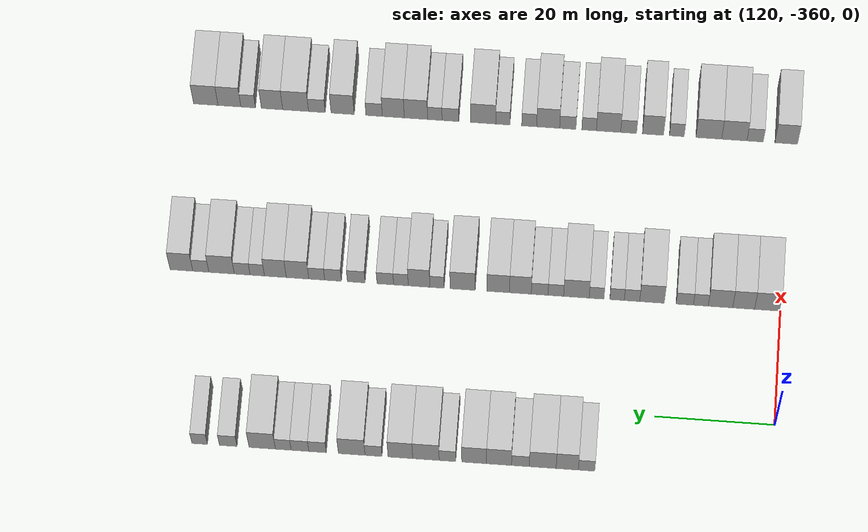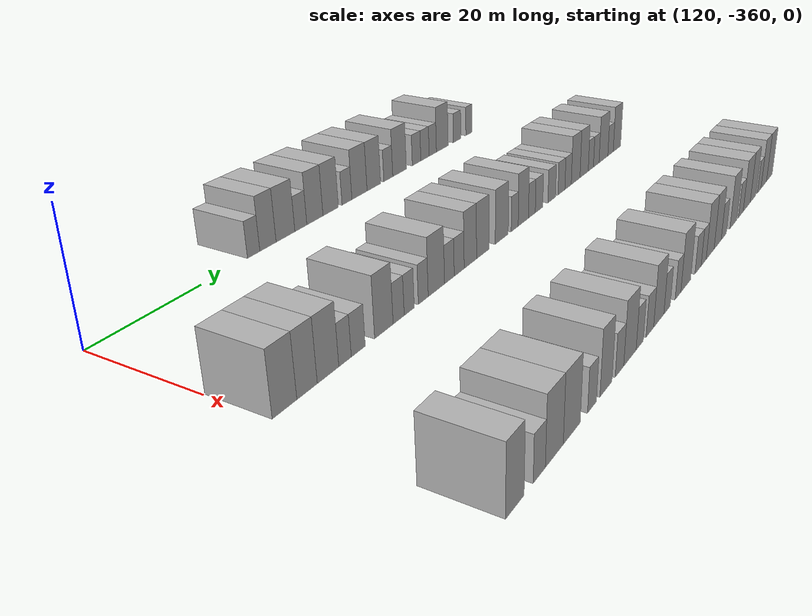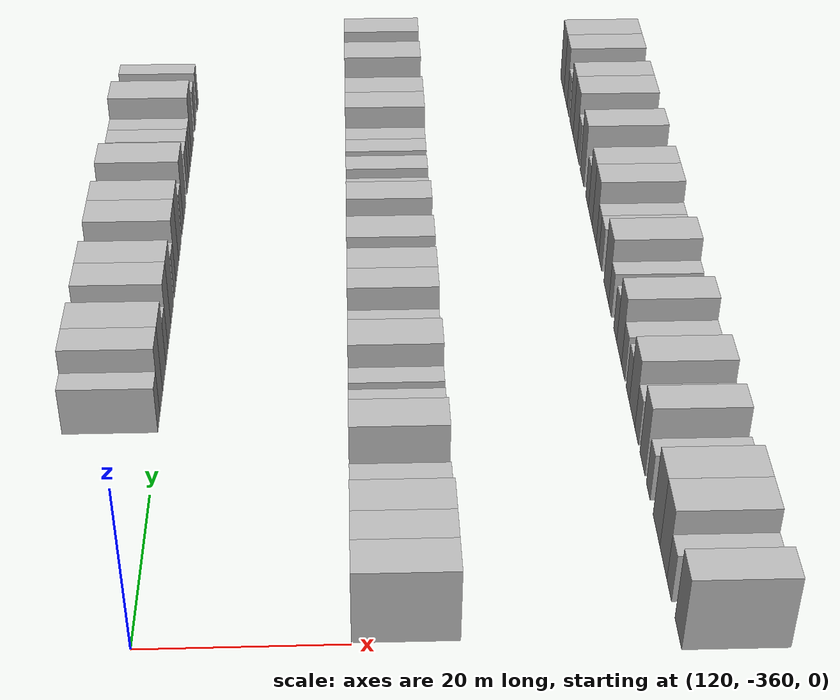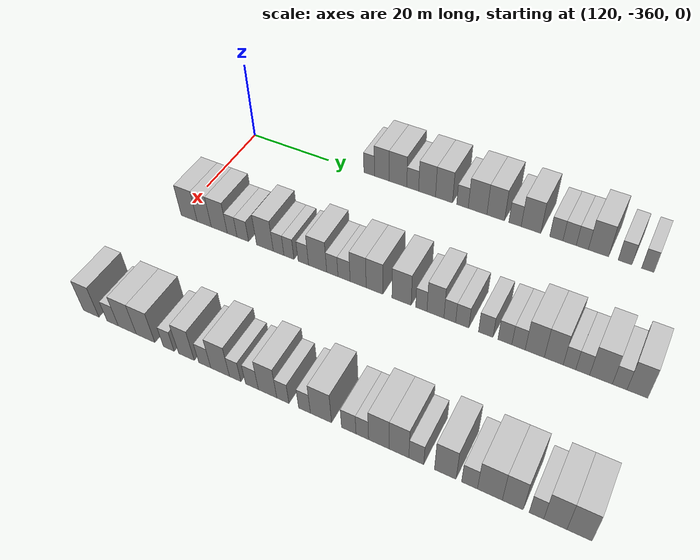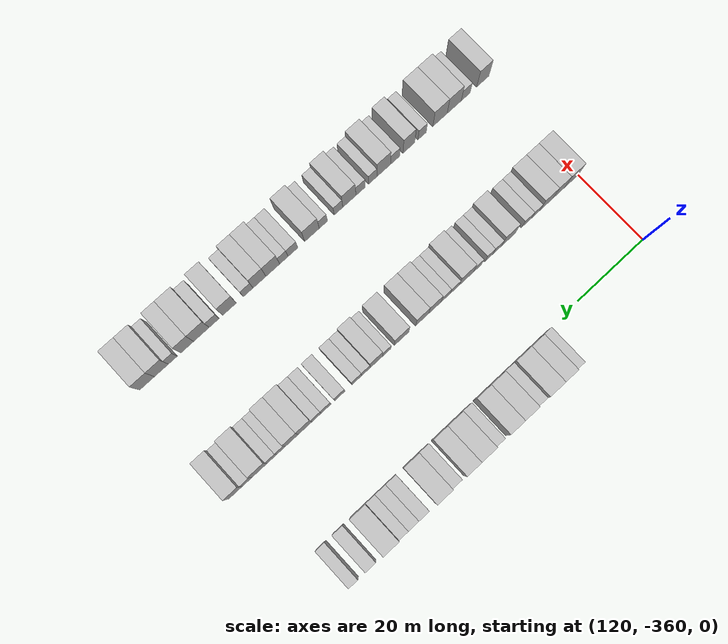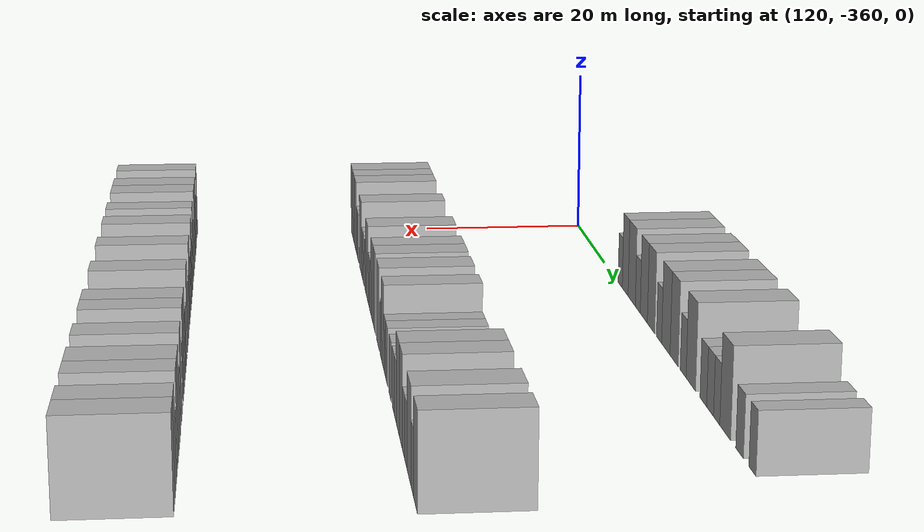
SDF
<sdf version="1.6">
 <world name="default">
  <model name="building_715">
   <static>1</static>
   <pose>115.0000 -329.2498 0 0.000000 0.000000 0.000000</pose>
   <link name="link">
    <pose>0 0 3.00 0 0 0</pose>
    <collision name="collision"><geometry><box><size>10.0000 2.7240 6.0000</size></box></geometry></collision>
    <visual name="visual">
     <cast_shadows>0</cast_shadows>
     <geometry><box><size>10.0000 2.7240 6.0000</size></box></geometry>
     <material>
      <script>
       <uri>model://HANNAS_wall/materials/scripts</uri>
       <uri>model://HANNAS_wall/materials/textures</uri>
       <name>vrc/HANNAS_wall</name>
      </script>
     </material>
    </visual>
   </link>
  </model>
  <model name="building_716">
   <static>1</static>
   <pose>115.0000 -326.0414 0 0.000000 0.000000 0.000000</pose>
   <link name="link">
    <pose>0 0 4.50 0 0 0</pose>
    <collision name="collision"><geometry><box><size>10.0000 3.6928 9.0000</size></box></geometry></collision>
    <visual name="visual">
     <cast_shadows>0</cast_shadows>
     <geometry><box><size>10.0000 3.6928 9.0000</size></box></geometry>
     <material>
      <script>
       <uri>model://HANNAS_wall/materials/scripts</uri>
       <uri>model://HANNAS_wall/materials/textures</uri>
       <name>vrc/HANNAS_wall</name>
      </script>
     </material>
    </visual>
   </link>
  </model>
  <model name="building_717">
   <static>1</static>
   <pose>115.0000 -321.9662 0 0.000000 0.000000 0.000000</pose>
   <link name="link">
    <pose>0 0 4.50 0 0 0</pose>
    <collision name="collision"><geometry><box><size>10.0000 4.4576 9.0000</size></box></geometry></collision>
    <visual name="visual">
     <cast_shadows>0</cast_shadows>
     <geometry><box><size>10.0000 4.4576 9.0000</size></box></geometry>
     <material>
      <script>
       <uri>model://HANNAS_wall/materials/scripts</uri>
       <uri>model://HANNAS_wall/materials/textures</uri>
       <name>vrc/HANNAS_wall</name>
      </script>
     </material>
    </visual>
   </link>
  </model>
  <model name="building_718">
   <static>1</static>
   <pose>115.0000 -318.2610 0 0.000000 0.000000 0.000000</pose>
   <link name="link">
    <pose>0 0 3.00 0 0 0</pose>
    <collision name="collision"><geometry><box><size>10.0000 2.9528 6.0000</size></box></geometry></collision>
    <visual name="visual">
     <cast_shadows>0</cast_shadows>
     <geometry><box><size>10.0000 2.9528 6.0000</size></box></geometry>
     <material>
      <script>
       <uri>model://HANNAS_wall/materials/scripts</uri>
       <uri>model://HANNAS_wall/materials/textures</uri>
       <name>vrc/HANNAS_wall</name>
      </script>
     </material>
    </visual>
   </link>
  </model>
  <model name="building_719">
   <static>1</static>
   <pose>115.0000 -314.7146 0 0.000000 0.000000 0.000000</pose>
   <link name="link">
    <pose>0 0 4.50 0 0 0</pose>
    <collision name="collision"><geometry><box><size>10.0000 4.1400 9.0000</size></box></geometry></collision>
    <visual name="visual">
     <cast_shadows>0</cast_shadows>
     <geometry><box><size>10.0000 4.1400 9.0000</size></box></geometry>
     <material>
      <script>
       <uri>model://HANNAS_wall/materials/scripts</uri>
       <uri>model://HANNAS_wall/materials/textures</uri>
       <name>vrc/HANNAS_wall</name>
      </script>
     </material>
    </visual>
   </link>
  </model>
  <model name="building_720">
   <static>1</static>
   <pose>115.0000 -310.5794 0 0.000000 0.000000 0.000000</pose>
   <link name="link">
    <pose>0 0 4.50 0 0 0</pose>
    <collision name="collision"><geometry><box><size>10.0000 4.1304 9.0000</size></box></geometry></collision>
    <visual name="visual">
     <cast_shadows>0</cast_shadows>
     <geometry><box><size>10.0000 4.1304 9.0000</size></box></geometry>
     <material>
      <script>
       <uri>model://HANNAS_wall/materials/scripts</uri>
       <uri>model://HANNAS_wall/materials/textures</uri>
       <name>vrc/HANNAS_wall</name>
      </script>
     </material>
    </visual>
   </link>
  </model>
  <model name="building_721">
   <static>1</static>
   <pose>115.0000 -306.1356 0 0.000000 0.000000 0.000000</pose>
   <link name="link">
    <pose>0 0 3.00 0 0 0</pose>
    <collision name="collision"><geometry><box><size>10.0000 2.7572 6.0000</size></box></geometry></collision>
    <visual name="visual">
     <cast_shadows>0</cast_shadows>
     <geometry><box><size>10.0000 2.7572 6.0000</size></box></geometry>
     <material>
      <script>
       <uri>model://HANNAS_wall/materials/scripts</uri>
       <uri>model://HANNAS_wall/materials/textures</uri>
       <name>vrc/HANNAS_wall</name>
      </script>
     </material>
    </visual>
   </link>
  </model>
  <model name="building_722">
   <static>1</static>
   <pose>115.0000 -302.5561 0 0.000000 0.000000 0.000000</pose>
   <link name="link">
    <pose>0 0 4.50 0 0 0</pose>
    <collision name="collision"><geometry><box><size>10.0000 4.4019 9.0000</size></box></geometry></collision>
    <visual name="visual">
     <cast_shadows>0</cast_shadows>
     <geometry><box><size>10.0000 4.4019 9.0000</size></box></geometry>
     <material>
      <script>
       <uri>model://HANNAS_wall/materials/scripts</uri>
       <uri>model://HANNAS_wall/materials/textures</uri>
       <name>vrc/HANNAS_wall</name>
      </script>
     </material>
    </visual>
   </link>
  </model>
  <model name="building_723">
   <static>1</static>
   <pose>115.0000 -298.3073 0 0.000000 0.000000 0.000000</pose>
   <link name="link">
    <pose>0 0 4.50 0 0 0</pose>
    <collision name="collision"><geometry><box><size>10.0000 4.0957 9.0000</size></box></geometry></collision>
    <visual name="visual">
     <cast_shadows>0</cast_shadows>
     <geometry><box><size>10.0000 4.0957 9.0000</size></box></geometry>
     <material>
      <script>
       <uri>model://HANNAS_wall/materials/scripts</uri>
       <uri>model://HANNAS_wall/materials/textures</uri>
       <name>vrc/HANNAS_wall</name>
      </script>
     </material>
    </visual>
   </link>
  </model>
  <model name="building_724">
   <static>1</static>
   <pose>115.0000 -293.8454 0 0.000000 0.000000 0.000000</pose>
   <link name="link">
    <pose>0 0 3.00 0 0 0</pose>
    <collision name="collision"><geometry><box><size>10.0000 2.8279 6.0000</size></box></geometry></collision>
    <visual name="visual">
     <cast_shadows>0</cast_shadows>
     <geometry><box><size>10.0000 2.8279 6.0000</size></box></geometry>
     <material>
      <script>
       <uri>model://HANNAS_wall/materials/scripts</uri>
       <uri>model://HANNAS_wall/materials/textures</uri>
       <name>vrc/HANNAS_wall</name>
      </script>
     </material>
    </visual>
   </link>
  </model>
  <model name="building_725">
   <static>1</static>
   <pose>115.0000 -290.2111 0 0.000000 0.000000 0.000000</pose>
   <link name="link">
    <pose>0 0 4.50 0 0 0</pose>
    <collision name="collision"><geometry><box><size>10.0000 4.4407 9.0000</size></box></geometry></collision>
    <visual name="visual">
     <cast_shadows>0</cast_shadows>
     <geometry><box><size>10.0000 4.4407 9.0000</size></box></geometry>
     <material>
      <script>
       <uri>model://HANNAS_wall/materials/scripts</uri>
       <uri>model://HANNAS_wall/materials/textures</uri>
       <name>vrc/HANNAS_wall</name>
      </script>
     </material>
    </visual>
   </link>
  </model>
  <model name="building_726">
   <static>1</static>
   <pose>115.0000 -284.5270 0 0.000000 0.000000 0.000000</pose>
   <link name="link">
    <pose>0 0 3.00 0 0 0</pose>
    <collision name="collision"><geometry><box><size>10.0000 2.9277 6.0000</size></box></geometry></collision>
    <visual name="visual">
     <cast_shadows>0</cast_shadows>
     <geometry><box><size>10.0000 2.9277 6.0000</size></box></geometry>
     <material>
      <script>
       <uri>model://HANNAS_wall/materials/scripts</uri>
       <uri>model://HANNAS_wall/materials/textures</uri>
       <name>vrc/HANNAS_wall</name>
      </script>
     </material>
    </visual>
   </link>
  </model>
  <model name="building_727">
   <static>1</static>
   <pose>115.0000 -281.5890 0 0.000000 0.000000 0.000000</pose>
   <link name="link">
    <pose>0 0 3.00 0 0 0</pose>
    <collision name="collision"><geometry><box><size>10.0000 2.9483 6.0000</size></box></geometry></collision>
    <visual name="visual">
     <cast_shadows>0</cast_shadows>
     <geometry><box><size>10.0000 2.9483 6.0000</size></box></geometry>
     <material>
      <script>
       <uri>model://HANNAS_wall/materials/scripts</uri>
       <uri>model://HANNAS_wall/materials/textures</uri>
       <name>vrc/HANNAS_wall</name>
      </script>
     </material>
    </visual>
   </link>
  </model>
  <model name="building_728">
   <static>1</static>
   <pose>115.0000 -278.8057 0 0.000000 0.000000 0.000000</pose>
   <link name="link">
    <pose>0 0 3.00 0 0 0</pose>
    <collision name="collision"><geometry><box><size>10.0000 2.6183 6.0000</size></box></geometry></collision>
    <visual name="visual">
     <cast_shadows>0</cast_shadows>
     <geometry><box><size>10.0000 2.6183 6.0000</size></box></geometry>
     <material>
      <script>
       <uri>model://HANNAS_wall/materials/scripts</uri>
       <uri>model://HANNAS_wall/materials/textures</uri>
       <name>vrc/HANNAS_wall</name>
      </script>
     </material>
    </visual>
   </link>
  </model>
  <model name="building_729">
   <static>1</static>
   <pose>115.0000 -275.3035 0 0.000000 0.000000 0.000000</pose>
   <link name="link">
    <pose>0 0 4.50 0 0 0</pose>
    <collision name="collision"><geometry><box><size>10.0000 4.3861 9.0000</size></box></geometry></collision>
    <visual name="visual">
     <cast_shadows>0</cast_shadows>
     <geometry><box><size>10.0000 4.3861 9.0000</size></box></geometry>
     <material>
      <script>
       <uri>model://HANNAS_wall/materials/scripts</uri>
       <uri>model://HANNAS_wall/materials/textures</uri>
       <name>vrc/HANNAS_wall</name>
      </script>
     </material>
    </visual>
   </link>
  </model>
  <model name="building_730">
   <static>1</static>
   <pose>115.0000 -269.6420 0 0.000000 0.000000 0.000000</pose>
   <link name="link">
    <pose>0 0 3.00 0 0 0</pose>
    <collision name="collision"><geometry><box><size>10.0000 2.9368 6.0000</size></box></geometry></collision>
    <visual name="visual">
     <cast_shadows>0</cast_shadows>
     <geometry><box><size>10.0000 2.9368 6.0000</size></box></geometry>
     <material>
      <script>
       <uri>model://HANNAS_wall/materials/scripts</uri>
       <uri>model://HANNAS_wall/materials/textures</uri>
       <name>vrc/HANNAS_wall</name>
      </script>
     </material>
    </visual>
   </link>
  </model>
  <model name="building_731">
   <static>1</static>
   <pose>115.0000 -264.8792 0 0.000000 0.000000 0.000000</pose>
   <link name="link">
    <pose>0 0 3.00 0 0 0</pose>
    <collision name="collision"><geometry><box><size>10.0000 2.5888 6.0000</size></box></geometry></collision>
    <visual name="visual">
     <cast_shadows>0</cast_shadows>
     <geometry><box><size>10.0000 2.5888 6.0000</size></box></geometry>
     <material>
      <script>
       <uri>model://HANNAS_wall/materials/scripts</uri>
       <uri>model://HANNAS_wall/materials/textures</uri>
       <name>vrc/HANNAS_wall</name>
      </script>
     </material>
    </visual>
   </link>
  </model>
  <model name="building_933">
   <static>1</static>
   <pose>145.0000 -357.7057 0 0.000000 0.000000 0.000000</pose>
   <link name="link">
    <pose>0 0 4.50 0 0 0</pose>
    <collision name="collision"><geometry><box><size>10.0000 4.2015 9.0000</size></box></geometry></collision>
    <visual name="visual">
     <cast_shadows>0</cast_shadows>
     <geometry><box><size>10.0000 4.2015 9.0000</size></box></geometry>
     <material>
      <script>
       <uri>model://HANNAS_wall/materials/scripts</uri>
       <uri>model://HANNAS_wall/materials/textures</uri>
       <name>vrc/HANNAS_wall</name>
      </script>
     </material>
    </visual>
   </link>
  </model>
  <model name="building_934">
   <static>1</static>
   <pose>145.0000 -353.7653 0 0.000000 0.000000 0.000000</pose>
   <link name="link">
    <pose>0 0 4.50 0 0 0</pose>
    <collision name="collision"><geometry><box><size>10.0000 3.6791 9.0000</size></box></geometry></collision>
    <visual name="visual">
     <cast_shadows>0</cast_shadows>
     <geometry><box><size>10.0000 3.6791 9.0000</size></box></geometry>
     <material>
      <script>
       <uri>model://HANNAS_wall/materials/scripts</uri>
       <uri>model://HANNAS_wall/materials/textures</uri>
       <name>vrc/HANNAS_wall</name>
      </script>
     </material>
    </visual>
   </link>
  </model>
  <model name="building_935">
   <static>1</static>
   <pose>145.0000 -349.8716 0 0.000000 0.000000 0.000000</pose>
   <link name="link">
    <pose>0 0 4.50 0 0 0</pose>
    <collision name="collision"><geometry><box><size>10.0000 4.1082 9.0000</size></box></geometry></collision>
    <visual name="visual">
     <cast_shadows>0</cast_shadows>
     <geometry><box><size>10.0000 4.1082 9.0000</size></box></geometry>
     <material>
      <script>
       <uri>model://HANNAS_wall/materials/scripts</uri>
       <uri>model://HANNAS_wall/materials/textures</uri>
       <name>vrc/HANNAS_wall</name>
      </script>
     </material>
    </visual>
   </link>
  </model>
  <model name="building_936">
   <static>1</static>
   <pose>145.0000 -346.5697 0 0.000000 0.000000 0.000000</pose>
   <link name="link">
    <pose>0 0 3.00 0 0 0</pose>
    <collision name="collision"><geometry><box><size>10.0000 2.4957 6.0000</size></box></geometry></collision>
    <visual name="visual">
     <cast_shadows>0</cast_shadows>
     <geometry><box><size>10.0000 2.4957 6.0000</size></box></geometry>
     <material>
      <script>
       <uri>model://HANNAS_wall/materials/scripts</uri>
       <uri>model://HANNAS_wall/materials/textures</uri>
       <name>vrc/HANNAS_wall</name>
      </script>
     </material>
    </visual>
   </link>
  </model>
  <model name="building_937">
   <static>1</static>
   <pose>145.0000 -343.8709 0 0.000000 0.000000 0.000000</pose>
   <link name="link">
    <pose>0 0 3.00 0 0 0</pose>
    <collision name="collision"><geometry><box><size>10.0000 2.9018 6.0000</size></box></geometry></collision>
    <visual name="visual">
     <cast_shadows>0</cast_shadows>
     <geometry><box><size>10.0000 2.9018 6.0000</size></box></geometry>
     <material>
      <script>
       <uri>model://HANNAS_wall/materials/scripts</uri>
       <uri>model://HANNAS_wall/materials/textures</uri>
       <name>vrc/HANNAS_wall</name>
      </script>
     </material>
    </visual>
   </link>
  </model>
  <model name="building_938">
   <static>1</static>
   <pose>145.0000 -338.3529 0 0.000000 0.000000 0.000000</pose>
   <link name="link">
    <pose>0 0 4.50 0 0 0</pose>
    <collision name="collision"><geometry><box><size>10.0000 4.1342 9.0000</size></box></geometry></collision>
    <visual name="visual">
     <cast_shadows>0</cast_shadows>
     <geometry><box><size>10.0000 4.1342 9.0000</size></box></geometry>
     <material>
      <script>
       <uri>model://HANNAS_wall/materials/scripts</uri>
       <uri>model://HANNAS_wall/materials/textures</uri>
       <name>vrc/HANNAS_wall</name>
      </script>
     </material>
    </visual>
   </link>
  </model>
  <model name="building_939">
   <static>1</static>
   <pose>145.0000 -334.9899 0 0.000000 0.000000 0.000000</pose>
   <link name="link">
    <pose>0 0 3.00 0 0 0</pose>
    <collision name="collision"><geometry><box><size>10.0000 2.5919 6.0000</size></box></geometry></collision>
    <visual name="visual">
     <cast_shadows>0</cast_shadows>
     <geometry><box><size>10.0000 2.5919 6.0000</size></box></geometry>
     <material>
      <script>
       <uri>model://HANNAS_wall/materials/scripts</uri>
       <uri>model://HANNAS_wall/materials/textures</uri>
       <name>vrc/HANNAS_wall</name>
      </script>
     </material>
    </visual>
   </link>
  </model>
  <model name="building_940">
   <static>1</static>
   <pose>145.0000 -332.4818 0 0.000000 0.000000 0.000000</pose>
   <link name="link">
    <pose>0 0 3.00 0 0 0</pose>
    <collision name="collision"><geometry><box><size>10.0000 2.4243 6.0000</size></box></geometry></collision>
    <visual name="visual">
     <cast_shadows>0</cast_shadows>
     <geometry><box><size>10.0000 2.4243 6.0000</size></box></geometry>
     <material>
      <script>
       <uri>model://HANNAS_wall/materials/scripts</uri>
       <uri>model://HANNAS_wall/materials/textures</uri>
       <name>vrc/HANNAS_wall</name>
      </script>
     </material>
    </visual>
   </link>
  </model>
  <model name="building_941">
   <static>1</static>
   <pose>145.0000 -329.0233 0 0.000000 0.000000 0.000000</pose>
   <link name="link">
    <pose>0 0 3.00 0 0 0</pose>
    <collision name="collision"><geometry><box><size>10.0000 2.4925 6.0000</size></box></geometry></collision>
    <visual name="visual">
     <cast_shadows>0</cast_shadows>
     <geometry><box><size>10.0000 2.4925 6.0000</size></box></geometry>
     <material>
      <script>
       <uri>model://HANNAS_wall/materials/scripts</uri>
       <uri>model://HANNAS_wall/materials/textures</uri>
       <name>vrc/HANNAS_wall</name>
      </script>
     </material>
    </visual>
   </link>
  </model>
  <model name="building_942">
   <static>1</static>
   <pose>145.0000 -325.6285 0 0.000000 0.000000 0.000000</pose>
   <link name="link">
    <pose>0 0 4.50 0 0 0</pose>
    <collision name="collision"><geometry><box><size>10.0000 4.2970 9.0000</size></box></geometry></collision>
    <visual name="visual">
     <cast_shadows>0</cast_shadows>
     <geometry><box><size>10.0000 4.2970 9.0000</size></box></geometry>
     <material>
      <script>
       <uri>model://HANNAS_wall/materials/scripts</uri>
       <uri>model://HANNAS_wall/materials/textures</uri>
       <name>vrc/HANNAS_wall</name>
      </script>
     </material>
    </visual>
   </link>
  </model>
  <model name="building_943">
   <static>1</static>
   <pose>145.0000 -322.1642 0 0.000000 0.000000 0.000000</pose>
   <link name="link">
    <pose>0 0 3.00 0 0 0</pose>
    <collision name="collision"><geometry><box><size>10.0000 2.6316 6.0000</size></box></geometry></collision>
    <visual name="visual">
     <cast_shadows>0</cast_shadows>
     <geometry><box><size>10.0000 2.6316 6.0000</size></box></geometry>
     <material>
      <script>
       <uri>model://HANNAS_wall/materials/scripts</uri>
       <uri>model://HANNAS_wall/materials/textures</uri>
       <name>vrc/HANNAS_wall</name>
      </script>
     </material>
    </visual>
   </link>
  </model>
  <model name="building_944">
   <static>1</static>
   <pose>145.0000 -319.4399 0 0.000000 0.000000 0.000000</pose>
   <link name="link">
    <pose>0 0 3.00 0 0 0</pose>
    <collision name="collision"><geometry><box><size>10.0000 2.8170 6.0000</size></box></geometry></collision>
    <visual name="visual">
     <cast_shadows>0</cast_shadows>
     <geometry><box><size>10.0000 2.8170 6.0000</size></box></geometry>
     <material>
      <script>
       <uri>model://HANNAS_wall/materials/scripts</uri>
       <uri>model://HANNAS_wall/materials/textures</uri>
       <name>vrc/HANNAS_wall</name>
      </script>
     </material>
    </visual>
   </link>
  </model>
  <model name="building_945">
   <static>1</static>
   <pose>145.0000 -316.2067 0 0.000000 0.000000 0.000000</pose>
   <link name="link">
    <pose>0 0 4.50 0 0 0</pose>
    <collision name="collision"><geometry><box><size>10.0000 3.6494 9.0000</size></box></geometry></collision>
    <visual name="visual">
     <cast_shadows>0</cast_shadows>
     <geometry><box><size>10.0000 3.6494 9.0000</size></box></geometry>
     <material>
      <script>
       <uri>model://HANNAS_wall/materials/scripts</uri>
       <uri>model://HANNAS_wall/materials/textures</uri>
       <name>vrc/HANNAS_wall</name>
      </script>
     </material>
    </visual>
   </link>
  </model>
  <model name="building_946">
   <static>1</static>
   <pose>145.0000 -312.4852 0 0.000000 0.000000 0.000000</pose>
   <link name="link">
    <pose>0 0 4.50 0 0 0</pose>
    <collision name="collision"><geometry><box><size>10.0000 3.7936 9.0000</size></box></geometry></collision>
    <visual name="visual">
     <cast_shadows>0</cast_shadows>
     <geometry><box><size>10.0000 3.7936 9.0000</size></box></geometry>
     <material>
      <script>
       <uri>model://HANNAS_wall/materials/scripts</uri>
       <uri>model://HANNAS_wall/materials/textures</uri>
       <name>vrc/HANNAS_wall</name>
      </script>
     </material>
    </visual>
   </link>
  </model>
  <model name="building_947">
   <static>1</static>
   <pose>145.0000 -306.4692 0 0.000000 0.000000 0.000000</pose>
   <link name="link">
    <pose>0 0 4.50 0 0 0</pose>
    <collision name="collision"><geometry><box><size>10.0000 4.2383 9.0000</size></box></geometry></collision>
    <visual name="visual">
     <cast_shadows>0</cast_shadows>
     <geometry><box><size>10.0000 4.2383 9.0000</size></box></geometry>
     <material>
      <script>
       <uri>model://HANNAS_wall/materials/scripts</uri>
       <uri>model://HANNAS_wall/materials/textures</uri>
       <name>vrc/HANNAS_wall</name>
      </script>
     </material>
    </visual>
   </link>
  </model>
  <model name="building_948">
   <static>1</static>
   <pose>145.0000 -302.1408 0 0.000000 0.000000 0.000000</pose>
   <link name="link">
    <pose>0 0 3.00 0 0 0</pose>
    <collision name="collision"><geometry><box><size>10.0000 2.4185 6.0000</size></box></geometry></collision>
    <visual name="visual">
     <cast_shadows>0</cast_shadows>
     <geometry><box><size>10.0000 2.4185 6.0000</size></box></geometry>
     <material>
      <script>
       <uri>model://HANNAS_wall/materials/scripts</uri>
       <uri>model://HANNAS_wall/materials/textures</uri>
       <name>vrc/HANNAS_wall</name>
      </script>
     </material>
    </visual>
   </link>
  </model>
  <model name="building_949">
   <static>1</static>
   <pose>145.0000 -299.1089 0 0.000000 0.000000 0.000000</pose>
   <link name="link">
    <pose>0 0 4.50 0 0 0</pose>
    <collision name="collision"><geometry><box><size>10.0000 3.6453 9.0000</size></box></geometry></collision>
    <visual name="visual">
     <cast_shadows>0</cast_shadows>
     <geometry><box><size>10.0000 3.6453 9.0000</size></box></geometry>
     <material>
      <script>
       <uri>model://HANNAS_wall/materials/scripts</uri>
       <uri>model://HANNAS_wall/materials/textures</uri>
       <name>vrc/HANNAS_wall</name>
      </script>
     </material>
    </visual>
   </link>
  </model>
  <model name="building_950">
   <static>1</static>
   <pose>145.0000 -296.0420 0 0.000000 0.000000 0.000000</pose>
   <link name="link">
    <pose>0 0 3.00 0 0 0</pose>
    <collision name="collision"><geometry><box><size>10.0000 2.4884 6.0000</size></box></geometry></collision>
    <visual name="visual">
     <cast_shadows>0</cast_shadows>
     <geometry><box><size>10.0000 2.4884 6.0000</size></box></geometry>
     <material>
      <script>
       <uri>model://HANNAS_wall/materials/scripts</uri>
       <uri>model://HANNAS_wall/materials/textures</uri>
       <name>vrc/HANNAS_wall</name>
      </script>
     </material>
    </visual>
   </link>
  </model>
  <model name="building_951">
   <static>1</static>
   <pose>145.0000 -293.4002 0 0.000000 0.000000 0.000000</pose>
   <link name="link">
    <pose>0 0 3.00 0 0 0</pose>
    <collision name="collision"><geometry><box><size>10.0000 2.7952 6.0000</size></box></geometry></collision>
    <visual name="visual">
     <cast_shadows>0</cast_shadows>
     <geometry><box><size>10.0000 2.7952 6.0000</size></box></geometry>
     <material>
      <script>
       <uri>model://HANNAS_wall/materials/scripts</uri>
       <uri>model://HANNAS_wall/materials/textures</uri>
       <name>vrc/HANNAS_wall</name>
      </script>
     </material>
    </visual>
   </link>
  </model>
  <model name="building_952">
   <static>1</static>
   <pose>145.0000 -288.5034 0 0.000000 0.000000 0.000000</pose>
   <link name="link">
    <pose>0 0 3.00 0 0 0</pose>
    <collision name="collision"><geometry><box><size>10.0000 2.9984 6.0000</size></box></geometry></collision>
    <visual name="visual">
     <cast_shadows>0</cast_shadows>
     <geometry><box><size>10.0000 2.9984 6.0000</size></box></geometry>
     <material>
      <script>
       <uri>model://HANNAS_wall/materials/scripts</uri>
       <uri>model://HANNAS_wall/materials/textures</uri>
       <name>vrc/HANNAS_wall</name>
      </script>
     </material>
    </visual>
   </link>
  </model>
  <model name="building_953">
   <static>1</static>
   <pose>145.0000 -284.5910 0 0.000000 0.000000 0.000000</pose>
   <link name="link">
    <pose>0 0 3.00 0 0 0</pose>
    <collision name="collision"><geometry><box><size>10.0000 2.8265 6.0000</size></box></geometry></collision>
    <visual name="visual">
     <cast_shadows>0</cast_shadows>
     <geometry><box><size>10.0000 2.8265 6.0000</size></box></geometry>
     <material>
      <script>
       <uri>model://HANNAS_wall/materials/scripts</uri>
       <uri>model://HANNAS_wall/materials/textures</uri>
       <name>vrc/HANNAS_wall</name>
      </script>
     </material>
    </visual>
   </link>
  </model>
  <model name="building_954">
   <static>1</static>
   <pose>145.0000 -281.8368 0 0.000000 0.000000 0.000000</pose>
   <link name="link">
    <pose>0 0 3.00 0 0 0</pose>
    <collision name="collision"><geometry><box><size>10.0000 2.6820 6.0000</size></box></geometry></collision>
    <visual name="visual">
     <cast_shadows>0</cast_shadows>
     <geometry><box><size>10.0000 2.6820 6.0000</size></box></geometry>
     <material>
      <script>
       <uri>model://HANNAS_wall/materials/scripts</uri>
       <uri>model://HANNAS_wall/materials/textures</uri>
       <name>vrc/HANNAS_wall</name>
      </script>
     </material>
    </visual>
   </link>
  </model>
  <model name="building_955">
   <static>1</static>
   <pose>145.0000 -278.5904 0 0.000000 0.000000 0.000000</pose>
   <link name="link">
    <pose>0 0 4.50 0 0 0</pose>
    <collision name="collision"><geometry><box><size>10.0000 3.8107 9.0000</size></box></geometry></collision>
    <visual name="visual">
     <cast_shadows>0</cast_shadows>
     <geometry><box><size>10.0000 3.8107 9.0000</size></box></geometry>
     <material>
      <script>
       <uri>model://HANNAS_wall/materials/scripts</uri>
       <uri>model://HANNAS_wall/materials/textures</uri>
       <name>vrc/HANNAS_wall</name>
      </script>
     </material>
    </visual>
   </link>
  </model>
  <model name="building_956">
   <static>1</static>
   <pose>145.0000 -274.8378 0 0.000000 0.000000 0.000000</pose>
   <link name="link">
    <pose>0 0 4.50 0 0 0</pose>
    <collision name="collision"><geometry><box><size>10.0000 3.6945 9.0000</size></box></geometry></collision>
    <visual name="visual">
     <cast_shadows>0</cast_shadows>
     <geometry><box><size>10.0000 3.6945 9.0000</size></box></geometry>
     <material>
      <script>
       <uri>model://HANNAS_wall/materials/scripts</uri>
       <uri>model://HANNAS_wall/materials/textures</uri>
       <name>vrc/HANNAS_wall</name>
      </script>
     </material>
    </visual>
   </link>
  </model>
  <model name="building_957">
   <static>1</static>
   <pose>145.0000 -271.7780 0 0.000000 0.000000 0.000000</pose>
   <link name="link">
    <pose>0 0 3.00 0 0 0</pose>
    <collision name="collision"><geometry><box><size>10.0000 2.4251 6.0000</size></box></geometry></collision>
    <visual name="visual">
     <cast_shadows>0</cast_shadows>
     <geometry><box><size>10.0000 2.4251 6.0000</size></box></geometry>
     <material>
      <script>
       <uri>model://HANNAS_wall/materials/scripts</uri>
       <uri>model://HANNAS_wall/materials/textures</uri>
       <name>vrc/HANNAS_wall</name>
      </script>
     </material>
    </visual>
   </link>
  </model>
  <model name="building_958">
   <static>1</static>
   <pose>145.0000 -269.2321 0 0.000000 0.000000 0.000000</pose>
   <link name="link">
    <pose>0 0 3.00 0 0 0</pose>
    <collision name="collision"><geometry><box><size>10.0000 2.6666 6.0000</size></box></geometry></collision>
    <visual name="visual">
     <cast_shadows>0</cast_shadows>
     <geometry><box><size>10.0000 2.6666 6.0000</size></box></geometry>
     <material>
      <script>
       <uri>model://HANNAS_wall/materials/scripts</uri>
       <uri>model://HANNAS_wall/materials/textures</uri>
       <name>vrc/HANNAS_wall</name>
      </script>
     </material>
    </visual>
   </link>
  </model>
  <model name="building_959">
   <static>1</static>
   <pose>145.0000 -265.7490 0 0.000000 0.000000 0.000000</pose>
   <link name="link">
    <pose>0 0 4.50 0 0 0</pose>
    <collision name="collision"><geometry><box><size>10.0000 4.2995 9.0000</size></box></geometry></collision>
    <visual name="visual">
     <cast_shadows>0</cast_shadows>
     <geometry><box><size>10.0000 4.2995 9.0000</size></box></geometry>
     <material>
      <script>
       <uri>model://HANNAS_wall/materials/scripts</uri>
       <uri>model://HANNAS_wall/materials/textures</uri>
       <name>vrc/HANNAS_wall</name>
      </script>
     </material>
    </visual>
   </link>
  </model>
  <model name="building_960">
   <static>1</static>
   <pose>145.0000 -262.2394 0 0.000000 0.000000 0.000000</pose>
   <link name="link">
    <pose>0 0 3.00 0 0 0</pose>
    <collision name="collision"><geometry><box><size>10.0000 2.7198 6.0000</size></box></geometry></collision>
    <visual name="visual">
     <cast_shadows>0</cast_shadows>
     <geometry><box><size>10.0000 2.7198 6.0000</size></box></geometry>
     <material>
      <script>
       <uri>model://HANNAS_wall/materials/scripts</uri>
       <uri>model://HANNAS_wall/materials/textures</uri>
       <name>vrc/HANNAS_wall</name>
      </script>
     </material>
    </visual>
   </link>
  </model>
  <model name="building_961">
   <static>1</static>
   <pose>145.0000 -258.9590 0 0.000000 0.000000 0.000000</pose>
   <link name="link">
    <pose>0 0 4.50 0 0 0</pose>
    <collision name="collision"><geometry><box><size>10.0000 3.8409 9.0000</size></box></geometry></collision>
    <visual name="visual">
     <cast_shadows>0</cast_shadows>
     <geometry><box><size>10.0000 3.8409 9.0000</size></box></geometry>
     <material>
      <script>
       <uri>model://HANNAS_wall/materials/scripts</uri>
       <uri>model://HANNAS_wall/materials/textures</uri>
       <name>vrc/HANNAS_wall</name>
      </script>
     </material>
    </visual>
   </link>
  </model>
  <model name="building_1166">
   <static>1</static>
   <pose>175.0000 -359.5195 0 0.000000 0.000000 0.000000</pose>
   <link name="link">
    <pose>0 0 4.50 0 0 0</pose>
    <collision name="collision"><geometry><box><size>10.0000 3.8460 9.0000</size></box></geometry></collision>
    <visual name="visual">
     <cast_shadows>0</cast_shadows>
     <geometry><box><size>10.0000 3.8460 9.0000</size></box></geometry>
     <material>
      <script>
       <uri>model://HANNAS_wall/materials/scripts</uri>
       <uri>model://HANNAS_wall/materials/textures</uri>
       <name>vrc/HANNAS_wall</name>
      </script>
     </material>
    </visual>
   </link>
  </model>
  <model name="building_1167">
   <static>1</static>
   <pose>175.0000 -354.2119 0 0.000000 0.000000 0.000000</pose>
   <link name="link">
    <pose>0 0 3.00 0 0 0</pose>
    <collision name="collision"><geometry><box><size>10.0000 2.7692 6.0000</size></box></geometry></collision>
    <visual name="visual">
     <cast_shadows>0</cast_shadows>
     <geometry><box><size>10.0000 2.7692 6.0000</size></box></geometry>
     <material>
      <script>
       <uri>model://HANNAS_wall/materials/scripts</uri>
       <uri>model://HANNAS_wall/materials/textures</uri>
       <name>vrc/HANNAS_wall</name>
      </script>
     </material>
    </visual>
   </link>
  </model>
  <model name="building_1168">
   <static>1</static>
   <pose>175.0000 -350.6620 0 0.000000 0.000000 0.000000</pose>
   <link name="link">
    <pose>0 0 4.50 0 0 0</pose>
    <collision name="collision"><geometry><box><size>10.0000 4.3307 9.0000</size></box></geometry></collision>
    <visual name="visual">
     <cast_shadows>0</cast_shadows>
     <geometry><box><size>10.0000 4.3307 9.0000</size></box></geometry>
     <material>
      <script>
       <uri>model://HANNAS_wall/materials/scripts</uri>
       <uri>model://HANNAS_wall/materials/textures</uri>
       <name>vrc/HANNAS_wall</name>
      </script>
     </material>
    </visual>
   </link>
  </model>
  <model name="building_1169">
   <static>1</static>
   <pose>175.0000 -346.2996 0 0.000000 0.000000 0.000000</pose>
   <link name="link">
    <pose>0 0 4.50 0 0 0</pose>
    <collision name="collision"><geometry><box><size>10.0000 4.3939 9.0000</size></box></geometry></collision>
    <visual name="visual">
     <cast_shadows>0</cast_shadows>
     <geometry><box><size>10.0000 4.3939 9.0000</size></box></geometry>
     <material>
      <script>
       <uri>model://HANNAS_wall/materials/scripts</uri>
       <uri>model://HANNAS_wall/materials/textures</uri>
       <name>vrc/HANNAS_wall</name>
      </script>
     </material>
    </visual>
   </link>
  </model>
  <model name="building_1170">
   <static>1</static>
   <pose>175.0000 -340.8447 0 0.000000 0.000000 0.000000</pose>
   <link name="link">
    <pose>0 0 3.00 0 0 0</pose>
    <collision name="collision"><geometry><box><size>10.0000 2.5161 6.0000</size></box></geometry></collision>
    <visual name="visual">
     <cast_shadows>0</cast_shadows>
     <geometry><box><size>10.0000 2.5161 6.0000</size></box></geometry>
     <material>
      <script>
       <uri>model://HANNAS_wall/materials/scripts</uri>
       <uri>model://HANNAS_wall/materials/textures</uri>
       <name>vrc/HANNAS_wall</name>
      </script>
     </material>
    </visual>
   </link>
  </model>
  <model name="building_1171">
   <static>1</static>
   <pose>175.0000 -336.7836 0 0.000000 0.000000 0.000000</pose>
   <link name="link">
    <pose>0 0 4.50 0 0 0</pose>
    <collision name="collision"><geometry><box><size>10.0000 3.6061 9.0000</size></box></geometry></collision>
    <visual name="visual">
     <cast_shadows>0</cast_shadows>
     <geometry><box><size>10.0000 3.6061 9.0000</size></box></geometry>
     <material>
      <script>
       <uri>model://HANNAS_wall/materials/scripts</uri>
       <uri>model://HANNAS_wall/materials/textures</uri>
       <name>vrc/HANNAS_wall</name>
      </script>
     </material>
    </visual>
   </link>
  </model>
  <model name="building_1172">
   <static>1</static>
   <pose>175.0000 -332.6222 0 0.000000 0.000000 0.000000</pose>
   <link name="link">
    <pose>0 0 3.00 0 0 0</pose>
    <collision name="collision"><geometry><box><size>10.0000 2.7166 6.0000</size></box></geometry></collision>
    <visual name="visual">
     <cast_shadows>0</cast_shadows>
     <geometry><box><size>10.0000 2.7166 6.0000</size></box></geometry>
     <material>
      <script>
       <uri>model://HANNAS_wall/materials/scripts</uri>
       <uri>model://HANNAS_wall/materials/textures</uri>
       <name>vrc/HANNAS_wall</name>
      </script>
     </material>
    </visual>
   </link>
  </model>
  <model name="building_1173">
   <static>1</static>
   <pose>175.0000 -329.1921 0 0.000000 0.000000 0.000000</pose>
   <link name="link">
    <pose>0 0 4.50 0 0 0</pose>
    <collision name="collision"><geometry><box><size>10.0000 4.1437 9.0000</size></box></geometry></collision>
    <visual name="visual">
     <cast_shadows>0</cast_shadows>
     <geometry><box><size>10.0000 4.1437 9.0000</size></box></geometry>
     <material>
      <script>
       <uri>model://HANNAS_wall/materials/scripts</uri>
       <uri>model://HANNAS_wall/materials/textures</uri>
       <name>vrc/HANNAS_wall</name>
      </script>
     </material>
    </visual>
   </link>
  </model>
  <model name="building_1174">
   <static>1</static>
   <pose>175.0000 -325.8716 0 0.000000 0.000000 0.000000</pose>
   <link name="link">
    <pose>0 0 3.00 0 0 0</pose>
    <collision name="collision"><geometry><box><size>10.0000 2.4973 6.0000</size></box></geometry></collision>
    <visual name="visual">
     <cast_shadows>0</cast_shadows>
     <geometry><box><size>10.0000 2.4973 6.0000</size></box></geometry>
     <material>
      <script>
       <uri>model://HANNAS_wall/materials/scripts</uri>
       <uri>model://HANNAS_wall/materials/textures</uri>
       <name>vrc/HANNAS_wall</name>
      </script>
     </material>
    </visual>
   </link>
  </model>
  <model name="building_1175">
   <static>1</static>
   <pose>175.0000 -322.2327 0 0.000000 0.000000 0.000000</pose>
   <link name="link">
    <pose>0 0 3.00 0 0 0</pose>
    <collision name="collision"><geometry><box><size>10.0000 2.7803 6.0000</size></box></geometry></collision>
    <visual name="visual">
     <cast_shadows>0</cast_shadows>
     <geometry><box><size>10.0000 2.7803 6.0000</size></box></geometry>
     <material>
      <script>
       <uri>model://HANNAS_wall/materials/scripts</uri>
       <uri>model://HANNAS_wall/materials/textures</uri>
       <name>vrc/HANNAS_wall</name>
      </script>
     </material>
    </visual>
   </link>
  </model>
  <model name="building_1176">
   <static>1</static>
   <pose>175.0000 -318.8788 0 0.000000 0.000000 0.000000</pose>
   <link name="link">
    <pose>0 0 4.50 0 0 0</pose>
    <collision name="collision"><geometry><box><size>10.0000 3.9276 9.0000</size></box></geometry></collision>
    <visual name="visual">
     <cast_shadows>0</cast_shadows>
     <geometry><box><size>10.0000 3.9276 9.0000</size></box></geometry>
     <material>
      <script>
       <uri>model://HANNAS_wall/materials/scripts</uri>
       <uri>model://HANNAS_wall/materials/textures</uri>
       <name>vrc/HANNAS_wall</name>
      </script>
     </material>
    </visual>
   </link>
  </model>
  <model name="building_1177">
   <static>1</static>
   <pose>175.0000 -315.6366 0 0.000000 0.000000 0.000000</pose>
   <link name="link">
    <pose>0 0 3.00 0 0 0</pose>
    <collision name="collision"><geometry><box><size>10.0000 2.5568 6.0000</size></box></geometry></collision>
    <visual name="visual">
     <cast_shadows>0</cast_shadows>
     <geometry><box><size>10.0000 2.5568 6.0000</size></box></geometry>
     <material>
      <script>
       <uri>model://HANNAS_wall/materials/scripts</uri>
       <uri>model://HANNAS_wall/materials/textures</uri>
       <name>vrc/HANNAS_wall</name>
      </script>
     </material>
    </visual>
   </link>
  </model>
  <model name="building_1178">
   <static>1</static>
   <pose>175.0000 -311.1357 0 0.000000 0.000000 0.000000</pose>
   <link name="link">
    <pose>0 0 3.00 0 0 0</pose>
    <collision name="collision"><geometry><box><size>10.0000 2.4449 6.0000</size></box></geometry></collision>
    <visual name="visual">
     <cast_shadows>0</cast_shadows>
     <geometry><box><size>10.0000 2.4449 6.0000</size></box></geometry>
     <material>
      <script>
       <uri>model://HANNAS_wall/materials/scripts</uri>
       <uri>model://HANNAS_wall/materials/textures</uri>
       <name>vrc/HANNAS_wall</name>
      </script>
     </material>
    </visual>
   </link>
  </model>
  <model name="building_1179">
   <static>1</static>
   <pose>175.0000 -307.7632 0 0.000000 0.000000 0.000000</pose>
   <link name="link">
    <pose>0 0 4.50 0 0 0</pose>
    <collision name="collision"><geometry><box><size>10.0000 4.3001 9.0000</size></box></geometry></collision>
    <visual name="visual">
     <cast_shadows>0</cast_shadows>
     <geometry><box><size>10.0000 4.3001 9.0000</size></box></geometry>
     <material>
      <script>
       <uri>model://HANNAS_wall/materials/scripts</uri>
       <uri>model://HANNAS_wall/materials/textures</uri>
       <name>vrc/HANNAS_wall</name>
      </script>
     </material>
    </visual>
   </link>
  </model>
  <model name="building_1180">
   <static>1</static>
   <pose>175.0000 -302.1733 0 0.000000 0.000000 0.000000</pose>
   <link name="link">
    <pose>0 0 3.00 0 0 0</pose>
    <collision name="collision"><geometry><box><size>10.0000 2.8797 6.0000</size></box></geometry></collision>
    <visual name="visual">
     <cast_shadows>0</cast_shadows>
     <geometry><box><size>10.0000 2.8797 6.0000</size></box></geometry>
     <material>
      <script>
       <uri>model://HANNAS_wall/materials/scripts</uri>
       <uri>model://HANNAS_wall/materials/textures</uri>
       <name>vrc/HANNAS_wall</name>
      </script>
     </material>
    </visual>
   </link>
  </model>
  <model name="building_1181">
   <static>1</static>
   <pose>175.0000 -299.4999 0 0.000000 0.000000 0.000000</pose>
   <link name="link">
    <pose>0 0 3.00 0 0 0</pose>
    <collision name="collision"><geometry><box><size>10.0000 2.4671 6.0000</size></box></geometry></collision>
    <visual name="visual">
     <cast_shadows>0</cast_shadows>
     <geometry><box><size>10.0000 2.4671 6.0000</size></box></geometry>
     <material>
      <script>
       <uri>model://HANNAS_wall/materials/scripts</uri>
       <uri>model://HANNAS_wall/materials/textures</uri>
       <name>vrc/HANNAS_wall</name>
      </script>
     </material>
    </visual>
   </link>
  </model>
  <model name="building_1182">
   <static>1</static>
   <pose>175.0000 -296.2699 0 0.000000 0.000000 0.000000</pose>
   <link name="link">
    <pose>0 0 4.50 0 0 0</pose>
    <collision name="collision"><geometry><box><size>10.0000 3.9929 9.0000</size></box></geometry></collision>
    <visual name="visual">
     <cast_shadows>0</cast_shadows>
     <geometry><box><size>10.0000 3.9929 9.0000</size></box></geometry>
     <material>
      <script>
       <uri>model://HANNAS_wall/materials/scripts</uri>
       <uri>model://HANNAS_wall/materials/textures</uri>
       <name>vrc/HANNAS_wall</name>
      </script>
     </material>
    </visual>
   </link>
  </model>
  <model name="building_1183">
   <static>1</static>
   <pose>175.0000 -292.3943 0 0.000000 0.000000 0.000000</pose>
   <link name="link">
    <pose>0 0 4.50 0 0 0</pose>
    <collision name="collision"><geometry><box><size>10.0000 3.7583 9.0000</size></box></geometry></collision>
    <visual name="visual">
     <cast_shadows>0</cast_shadows>
     <geometry><box><size>10.0000 3.7583 9.0000</size></box></geometry>
     <material>
      <script>
       <uri>model://HANNAS_wall/materials/scripts</uri>
       <uri>model://HANNAS_wall/materials/textures</uri>
       <name>vrc/HANNAS_wall</name>
      </script>
     </material>
    </visual>
   </link>
  </model>
  <model name="building_1184">
   <static>1</static>
   <pose>175.0000 -289.1108 0 0.000000 0.000000 0.000000</pose>
   <link name="link">
    <pose>0 0 3.00 0 0 0</pose>
    <collision name="collision"><geometry><box><size>10.0000 2.8089 6.0000</size></box></geometry></collision>
    <visual name="visual">
     <cast_shadows>0</cast_shadows>
     <geometry><box><size>10.0000 2.8089 6.0000</size></box></geometry>
     <material>
      <script>
       <uri>model://HANNAS_wall/materials/scripts</uri>
       <uri>model://HANNAS_wall/materials/textures</uri>
       <name>vrc/HANNAS_wall</name>
      </script>
     </material>
    </visual>
   </link>
  </model>
  <model name="building_1185">
   <static>1</static>
   <pose>175.0000 -283.7209 0 0.000000 0.000000 0.000000</pose>
   <link name="link">
    <pose>0 0 4.50 0 0 0</pose>
    <collision name="collision"><geometry><box><size>10.0000 3.9709 9.0000</size></box></geometry></collision>
    <visual name="visual">
     <cast_shadows>0</cast_shadows>
     <geometry><box><size>10.0000 3.9709 9.0000</size></box></geometry>
     <material>
      <script>
       <uri>model://HANNAS_wall/materials/scripts</uri>
       <uri>model://HANNAS_wall/materials/textures</uri>
       <name>vrc/HANNAS_wall</name>
      </script>
     </material>
    </visual>
   </link>
  </model>
  <model name="building_1186">
   <static>1</static>
   <pose>175.0000 -279.3050 0 0.000000 0.000000 0.000000</pose>
   <link name="link">
    <pose>0 0 3.00 0 0 0</pose>
    <collision name="collision"><geometry><box><size>10.0000 2.8609 6.0000</size></box></geometry></collision>
    <visual name="visual">
     <cast_shadows>0</cast_shadows>
     <geometry><box><size>10.0000 2.8609 6.0000</size></box></geometry>
     <material>
      <script>
       <uri>model://HANNAS_wall/materials/scripts</uri>
       <uri>model://HANNAS_wall/materials/textures</uri>
       <name>vrc/HANNAS_wall</name>
      </script>
     </material>
    </visual>
   </link>
  </model>
  <model name="building_1187">
   <static>1</static>
   <pose>175.0000 -275.6577 0 0.000000 0.000000 0.000000</pose>
   <link name="link">
    <pose>0 0 4.50 0 0 0</pose>
    <collision name="collision"><geometry><box><size>10.0000 4.4337 9.0000</size></box></geometry></collision>
    <visual name="visual">
     <cast_shadows>0</cast_shadows>
     <geometry><box><size>10.0000 4.4337 9.0000</size></box></geometry>
     <material>
      <script>
       <uri>model://HANNAS_wall/materials/scripts</uri>
       <uri>model://HANNAS_wall/materials/textures</uri>
       <name>vrc/HANNAS_wall</name>
      </script>
     </material>
    </visual>
   </link>
  </model>
  <model name="building_1188">
   <static>1</static>
   <pose>175.0000 -271.6099 0 0.000000 0.000000 0.000000</pose>
   <link name="link">
    <pose>0 0 4.50 0 0 0</pose>
    <collision name="collision"><geometry><box><size>10.0000 3.6619 9.0000</size></box></geometry></collision>
    <visual name="visual">
     <cast_shadows>0</cast_shadows>
     <geometry><box><size>10.0000 3.6619 9.0000</size></box></geometry>
     <material>
      <script>
       <uri>model://HANNAS_wall/materials/scripts</uri>
       <uri>model://HANNAS_wall/materials/textures</uri>
       <name>vrc/HANNAS_wall</name>
      </script>
     </material>
    </visual>
   </link>
  </model>
  <model name="building_1189">
   <static>1</static>
   <pose>175.0000 -267.5231 0 0.000000 0.000000 0.000000</pose>
   <link name="link">
    <pose>0 0 3.00 0 0 0</pose>
    <collision name="collision"><geometry><box><size>10.0000 2.5116 6.0000</size></box></geometry></collision>
    <visual name="visual">
     <cast_shadows>0</cast_shadows>
     <geometry><box><size>10.0000 2.5116 6.0000</size></box></geometry>
     <material>
      <script>
       <uri>model://HANNAS_wall/materials/scripts</uri>
       <uri>model://HANNAS_wall/materials/textures</uri>
       <name>vrc/HANNAS_wall</name>
      </script>
     </material>
    </visual>
   </link>
  </model>
  <model name="building_1190">
   <static>1</static>
   <pose>175.0000 -264.3102 0 0.000000 0.000000 0.000000</pose>
   <link name="link">
    <pose>0 0 4.50 0 0 0</pose>
    <collision name="collision"><geometry><box><size>10.0000 3.9142 9.0000</size></box></geometry></collision>
    <visual name="visual">
     <cast_shadows>0</cast_shadows>
     <geometry><box><size>10.0000 3.9142 9.0000</size></box></geometry>
     <material>
      <script>
       <uri>model://HANNAS_wall/materials/scripts</uri>
       <uri>model://HANNAS_wall/materials/textures</uri>
       <name>vrc/HANNAS_wall</name>
      </script>
     </material>
    </visual>
   </link>
  </model>
  <model name="building_1191">
   <static>1</static>
   <pose>175.0000 -260.2583 0 0.000000 0.000000 0.000000</pose>
   <link name="link">
    <pose>0 0 4.50 0 0 0</pose>
    <collision name="collision"><geometry><box><size>10.0000 4.1895 9.0000</size></box></geometry></collision>
    <visual name="visual">
     <cast_shadows>0</cast_shadows>
     <geometry><box><size>10.0000 4.1895 9.0000</size></box></geometry>
     <material>
      <script>
       <uri>model://HANNAS_wall/materials/scripts</uri>
       <uri>model://HANNAS_wall/materials/textures</uri>
       <name>vrc/HANNAS_wall</name>
      </script>
     </material>
    </visual>
   </link>
  </model>
 </world>
</sdf>
